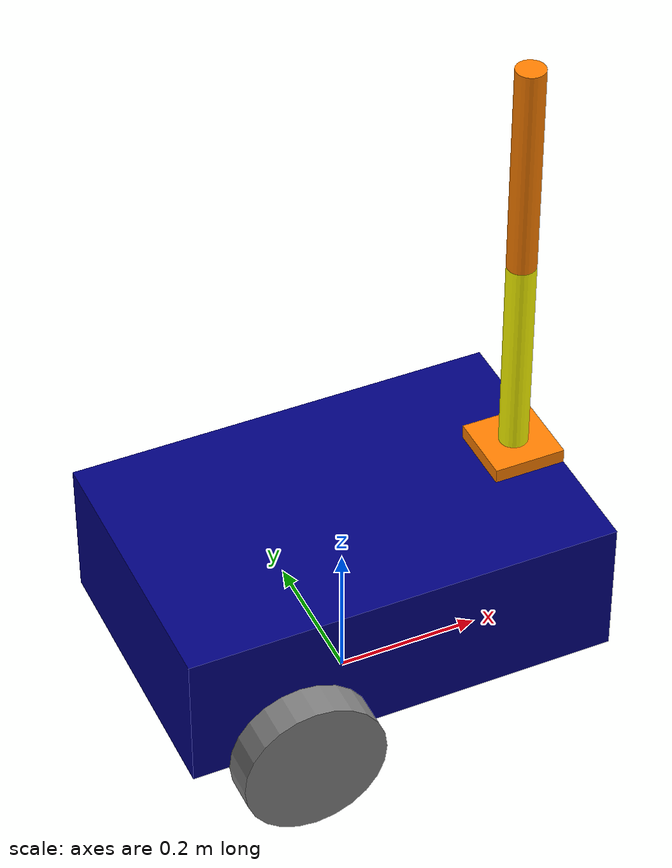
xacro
<?xml version="1.0"?>
<robot name="urdf_project_robot" xmlns:xacro="http://www.ros.org/wiki/xacro">

    <xacro:include filename="plugin.xacro" />

    <material name="blue">
        <color rgba="0 0 0.5 1" />
    </material>

    <material name="grey">
        <color rgba="0.5 0.5 0.5 1" />
    </material>

    <material name="orange">
        <color rgba="1 0.5 0 1" />
    </material>

    <material name="yellow">
        <color rgba="1 1 0 1" />
    </material>

    <gazebo reference="base_link">
        <material>Gazebo/Blue</material>
    </gazebo>

    <gazebo reference="right_wheel_link">
        <material>Gazebo/Grey</material>
    </gazebo>

    <gazebo reference="left_wheel_link">
        <material>Gazebo/Grey</material>
    </gazebo>

    <gazebo reference="caster_wheel_link">
        <material>Gazebo/Grey</material>
    </gazebo>

    <gazebo reference="arm_base_link">
        <material>Gazebo/Orange</material>
    </gazebo>

    <gazebo reference="forearm_link">
        <material>Gazebo/Yellow</material>
    </gazebo>

    <gazebo reference="hand_link">
        <material>Gazebo/Orange</material>
    </gazebo>

    <xacro:property name="base_length" value="0.6" />
    <xacro:property name="base_width" value="0.4" />
    <xacro:property name="base_height" value="0.2" />
    <xacro:property name="wheel_radius" value="0.1" />
    <xacro:property name="wheel_length" value="0.05" />

    <xacro:macro name="box_inertia" params="m l w h xyz rpy">
        <inertial>
            <origin xyz="${xyz}" rpy="${rpy}" />
            <mass value="${m}" />
            <inertia ixx="${2 * (m/12) * (h*h + l*l)}" ixy="0" ixz="0"
                     iyy="${2 * (m/12) * (w*w + l*l)}" iyz="0"
                     izz="${2 * (m/12) * (w*w + h*h)}" />
        </inertial>
    </xacro:macro>

    <xacro:macro name="cylinder_inertia" params="m r h xyz rpy">
        <inertial>
            <origin xyz="${xyz}" rpy="${rpy}" />
            <mass value="${m}" />
            <inertia ixx="${2 * (m/12) * (3*r*r + h*h)}" ixy="0" ixz="0"
                     iyy="${2 * (m/12) * (3*r*r + h*h)}" iyz="0"
                     izz="${2 * (m/2) * (r*r)}" />
        </inertial>
    </xacro:macro>

    <xacro:macro name="sphere_inertia" params="m r xyz rpy">
        <inertial>
            <origin xyz="${xyz}" rpy="${rpy}" />
            <mass value="${m}" />
            <inertia ixx="${2 * (2/5) * m * r * r}" ixy="0" ixz="0"
                     iyy="${2 * (2/5) * m * r * r}" iyz="0"
                     izz="${2 * (2/5) * m * r * r}" />
        </inertial>
    </xacro:macro>

    <link name="base_footprint" />

    <link name="base_link">
        <visual>
            <geometry>
                <box size="${base_length} ${base_width} ${base_height}" />
            </geometry>
            <origin xyz="0 0 ${base_height / 2.0}" rpy="0 0 0" />
            <material name="blue" />
        </visual>
        <xacro:box_inertia m="5" l="${base_length}" w="${base_width}" h="${base_height}"
                           xyz="0 0 ${base_height / 2.0}" rpy="0 0 0" />
        <collision>
            <origin xyz="0 0 ${base_height / 2.0}" rpy="0 0 0" />
            <geometry>
                <box size="${base_length} ${base_width} ${base_height}" />
            </geometry>
        </collision>
    </link>

    <xacro:macro name="wheel_link" params="prefix">
        <link name="${prefix}_wheel_link">
            <visual>
                <geometry>
                    <cylinder radius="${wheel_radius}" length="${wheel_length}" />
                </geometry>
                <origin xyz="0 0 0" rpy="${pi / 2.0} 0 0" />
                <material name="grey" />
            </visual>
            <xacro:cylinder_inertia m="1" r="${wheel_radius}" h="${wheel_length}"
                                    xyz="0 0 0" rpy="${pi / 2.0} 0 0" />
            <collision>
                <origin xyz="0 0 0" rpy="${pi / 2.0} 0 0" />
                <geometry>
                    <cylinder radius="${wheel_radius}" length="${wheel_length}" />
                </geometry>
            </collision>
        </link>
    </xacro:macro>

    <xacro:wheel_link prefix="right" />
    <xacro:wheel_link prefix="left" />

    <link name="caster_wheel_link">
        <visual>
            <geometry>
                <sphere radius="${wheel_radius / 2.0}" />
            </geometry>
            <origin xyz="0 0 0" rpy="0 0 0" />
            <material name="grey" />
        </visual>
        <xacro:sphere_inertia m="0.5" r="${wheel_radius / 2.0}" xyz="0 0 0" rpy="0 0 0" />
        <collision>
            <origin xyz="0 0 0" rpy="0 0 0" />
            <geometry>
                <sphere radius="${wheel_radius / 2.0}" />
            </geometry>
        </collision>
    </link>

    <link name="arm_base_link">
        <visual>
            <geometry>
                <box size="0.1 0.1 0.02" />
            </geometry>
            <origin xyz="0 0 0" rpy="0 0 0" />
            <material name="orange" />
        </visual>
        <xacro:box_inertia m="0.2" l="0.1" w="0.1" h="0.02" xyz="0 0 0" rpy="0 0 0" />
        <collision>
            <origin xyz="0 0 0" rpy="0 0 0" />
            <geometry>
                <box size="0.1 0.1 0.02" />
            </geometry>
        </collision>
    </link>

    <link name="forearm_link">
        <visual>
            <geometry>
                <cylinder radius="0.02" length="0.3" />
            </geometry>
            <origin xyz="0 0 0.15" rpy="0 0 0" />
            <material name="yellow" />
        </visual>
        <xacro:cylinder_inertia m="0.3" r="0.02" h="0.3" xyz="0 0 0.15" rpy="0 0 0" />
        <collision>
            <origin xyz="0 0 0.15" rpy="0 0 0" />
            <geometry>
                <cylinder radius="0.02" length="0.3" />
            </geometry>
        </collision>
    </link>

    <link name="hand_link">
        <visual>
            <geometry>
                <cylinder radius="0.02" length="0.3" />
            </geometry>
            <origin xyz="0 0 0.15" rpy="0 0 0" />
            <material name="orange" />
        </visual>
        <xacro:cylinder_inertia m="0.3" r="0.02" h="0.3" xyz="0 0 0.15" rpy="0 0 0" />
        <collision>
            <origin xyz="0 0 0.15" rpy="0 0 0" />
            <geometry>
                <cylinder radius="0.02" length="0.3" />
            </geometry>
        </collision>
    </link>

    <joint name="caster_joint" type="fixed">
        <origin xyz="${base_length / 4.0} 0 ${-wheel_radius / 2.0}" rpy="0 0 0" />
        <parent link="base_link" />
        <child link="caster_wheel_link" />
    </joint>

    <joint name="right_wheel_joint" type="continuous">
        <origin xyz="${-base_length / 4.0} ${(base_width + wheel_length) / 2.0} 0" rpy="0 0 0" />
        <parent link="base_link" />
        <child link="right_wheel_link" />
        <axis xyz="0 1 0" />
    </joint>

    <joint name="left_wheel_joint" type="continuous">
        <origin xyz="${-base_length / 4.0} ${-(base_width + wheel_length) / 2.0} 0" rpy="0 0 0" />
        <parent link="base_link" />
        <child link="left_wheel_link" />
        <axis xyz="0 1 0" />
    </joint>

    <joint name="base_joint" type="fixed">
        <parent link="base_footprint" />
        <child link="base_link" />
        <origin xyz="0 0 ${wheel_radius}" rpy="0 0 0"/>
    </joint>

    <joint name="arm_base_joint" type="fixed">
        <parent link="base_link" />
        <child link="arm_base_link" />
        <origin xyz="0.25 0 ${base_height + 0.01}" rpy="0 0 0" />
    </joint>

    <joint name="forearm_joint" type="revolute">
        <parent link="arm_base_link" />
        <child link="forearm_link" />
        <origin xyz="0 0 0" rpy="0 0 0" />
        <axis xyz="0 1 0 " />
        <limit effort="1000.0" lower="-1.57" upper="1.57" velocity="1.0" />
    </joint>

    <joint name="hand_joint" type="revolute">
        <parent link="forearm_link" />
        <child link="hand_link" />
        <origin xyz="0 0 0.3" rpy="0 0 0" />
        <axis xyz="0 1 0" />
        <limit effort="1000.0" lower="-1.57" upper="1.57" velocity="1.0" />
    </joint>

</robot>
